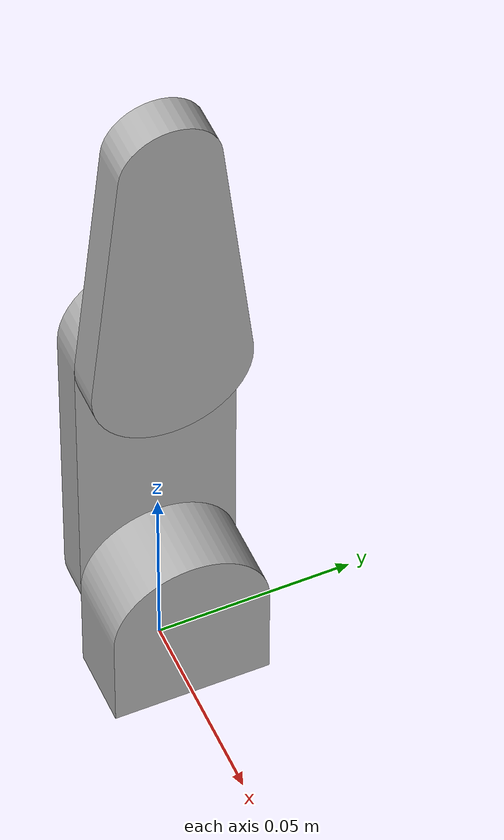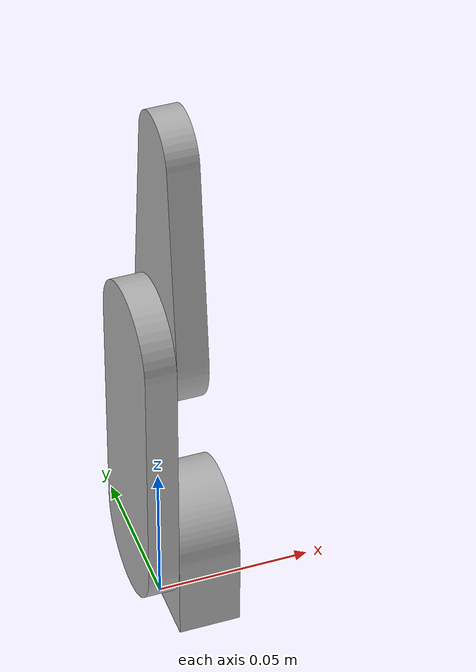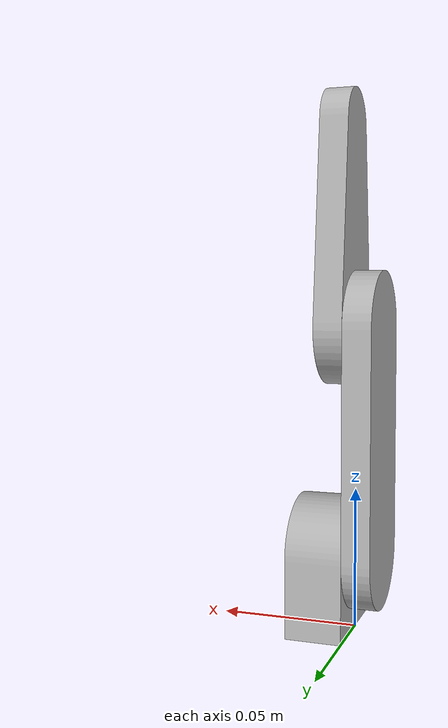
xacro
<?xml version="1.0" ?>
<robot name="arm" xmlns:xacro="http://www.ros.org/wiki/xacro">

<xacro:include filename="$(find arm_description)/urdf/materials.xacro" />
<xacro:include filename="$(find arm_description)/urdf/arm.trans" />
<xacro:include filename="$(find arm_description)/urdf/arm.gazebo" />
<link name="base_link">
  <inertial>
    <origin xyz="0.009999999999999998 0.0 0.02183457057097043" rpy="0 0 0"/>
    <mass value="0.2713460093227194"/>
    <inertia ixx="7.8e-05" iyy="5.4e-05" izz="4.2e-05" ixy="0.0" iyz="0.0" ixz="-0.0"/>
  </inertial>
  <visual>
    <origin xyz="0 0 0" rpy="0 0 0"/>
    <geometry>
      <mesh filename="package://arm_description/meshes/base_link.stl" scale="0.001 0.001 0.001"/>
    </geometry>
    <material name="silver"/>
  </visual>
  <collision>
    <origin xyz="0 0 0" rpy="0 0 0"/>
    <geometry>
      <mesh filename="package://arm_description/meshes/base_link.stl" scale="0.001 0.001 0.001"/>
    </geometry>
  </collision>
</link>

<link name="link1_1">
  <inertial>
    <origin xyz="-0.005 -3.188694641116523e-18 0.039999999999999994" rpy="0 0 0"/>
    <mass value="0.34984600932271964"/>
    <inertia ixx="0.000412" iyy="0.000372" izz="4.6e-05" ixy="0.0" iyz="-0.0" ixz="0.0"/>
  </inertial>
  <visual>
    <origin xyz="-0.0 -0.0 -0.0275" rpy="0 0 0"/>
    <geometry>
      <mesh filename="package://arm_description/meshes/link1_1.stl" scale="0.001 0.001 0.001"/>
    </geometry>
    <material name="silver"/>
  </visual>
  <collision>
    <origin xyz="-0.0 -0.0 -0.0275" rpy="0 0 0"/>
    <geometry>
      <mesh filename="package://arm_description/meshes/link1_1.stl" scale="0.001 0.001 0.001"/>
    </geometry>
  </collision>
</link>

<link name="link2_1">
  <inertial>
    <origin xyz="0.005 -2.6742327003636473e-16 0.027540838816112787" rpy="0 0 0"/>
    <mass value="0.24820334315710035"/>
    <inertia ixx="0.000208" iyy="0.000188" izz="2.5e-05" ixy="0.0" iyz="-0.0" ixz="0.0"/>
  </inertial>
  <visual>
    <origin xyz="-0.0 -0.0 -0.1075" rpy="0 0 0"/>
    <geometry>
      <mesh filename="package://arm_description/meshes/link2_1.stl" scale="0.001 0.001 0.001"/>
    </geometry>
    <material name="silver"/>
  </visual>
  <collision>
    <origin xyz="-0.0 -0.0 -0.1075" rpy="0 0 0"/>
    <geometry>
      <mesh filename="package://arm_description/meshes/link2_1.stl" scale="0.001 0.001 0.001"/>
    </geometry>
  </collision>
</link>

<joint name="Rígida 1" type="fixed">
  <origin xyz="0.0 0.0 0.0275" rpy="0 0 0"/>
  <parent link="base_link"/>
  <child link="link1_1"/>
</joint>

<joint name="Rígida 2" type="fixed">
  <origin xyz="0.0 0.0 0.08" rpy="0 0 0"/>
  <parent link="link1_1"/>
  <child link="link2_1"/>
</joint>

</robot>

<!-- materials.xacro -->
<robot name="arm" xmlns:xacro="http://www.ros.org/wiki/xacro" >

<material name="silver">
  <color rgba="0.700 0.700 0.700 1.000"/>
</material>

</robot>

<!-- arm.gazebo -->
<robot name="arm" xmlns:xacro="http://www.ros.org/wiki/xacro" >

<xacro:property name="body_color" value="Gazebo/Silver" />

<gazebo>
  <plugin name="control" filename="libgazebo_ros_control.so"/>
</gazebo>
<gazebo reference="base_link">
  <material>${body_color}</material>
  <mu1>0.2</mu1>
  <mu2>0.2</mu2>
  <selfCollide>true</selfCollide>
  <gravity>true</gravity>
</gazebo>

<gazebo reference="link1_1">
  <material>${body_color}</material>
  <mu1>0.2</mu1>
  <mu2>0.2</mu2>
  <selfCollide>true</selfCollide>
</gazebo>

<gazebo reference="link2_1">
  <material>${body_color}</material>
  <mu1>0.2</mu1>
  <mu2>0.2</mu2>
  <selfCollide>true</selfCollide>
</gazebo>

</robot>
